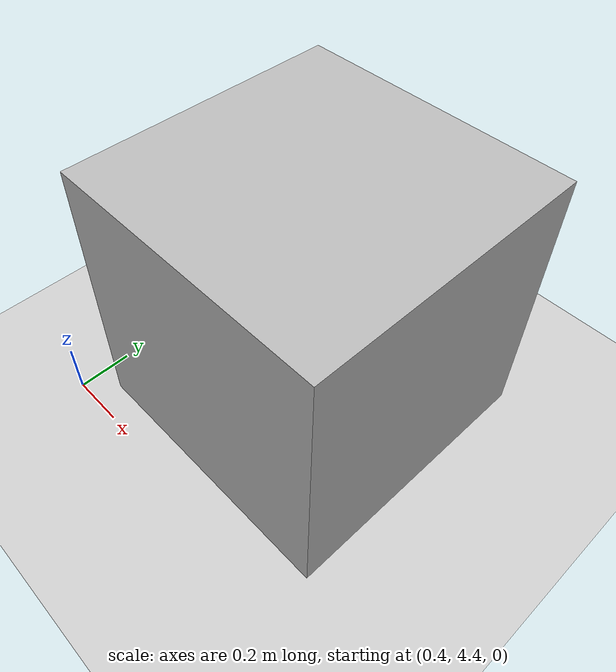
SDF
<?xml version="1.0" ?>
<sdf version="1.7">
    <world name="gazebo_ros_vision_test">
        <include>
            <uri>https://fuel.ignitionrobotics.org/1.0/OpenRobotics/models/Ground Plane</uri>
        </include>
        <model name="target">
            <pose>1 5 0.5 0 0 0</pose>
            <static>true</static>
            <link name="link">
                <visual name="visual">
                    <geometry>
                        <box>
                            <size>1 1 1</size>
                        </box>
                    </geometry>
                </visual>
                <collision name="collision">
                    <geometry>
                        <box>
                            <size>1 1 1</size>
                        </box>
                    </geometry>
                </collision>
            </link>
        </model>
        <model name="detector">
            <pose>1 0 0 0 0 0</pose>
            <static>true</static>
            <link name="root" />
            <link name="camera">
                <pose>0 0 1 0 0 1.5707963267948966</pose>
                <sensor type="camera" name="camera">
                    <pose>1 0 0 0 0 0</pose>
                    <always_on>1</always_on>
                    <update_rate>1</update_rate>
                    <camera>
                        <aspect_ratio>1.33333</aspect_ratio>
                        <horizontal_fov>0.52</horizontal_fov>
                    </camera>
                </sensor>
            </link>
            <joint name="camera_joint" type="fixed">
                <parent>root</parent>
                <child>camera</child>
            </joint>
            <plugin name="detector_detections" filename="libgazebo_ros_detections.so">
                <ros>
                    <remapping>~/detections:=/detections</remapping>
                </ros>
                <frame_name>camera</frame_name>
                <frame_is_sensor>true</frame_is_sensor>
                <update_rate>1.0</update_rate>
                <max_distance>10.0</max_distance>
                <model_whitelist>
                    <prefix>target</prefix>
                </model_whitelist>
            </plugin>
        </model>
    </world>
</sdf>
